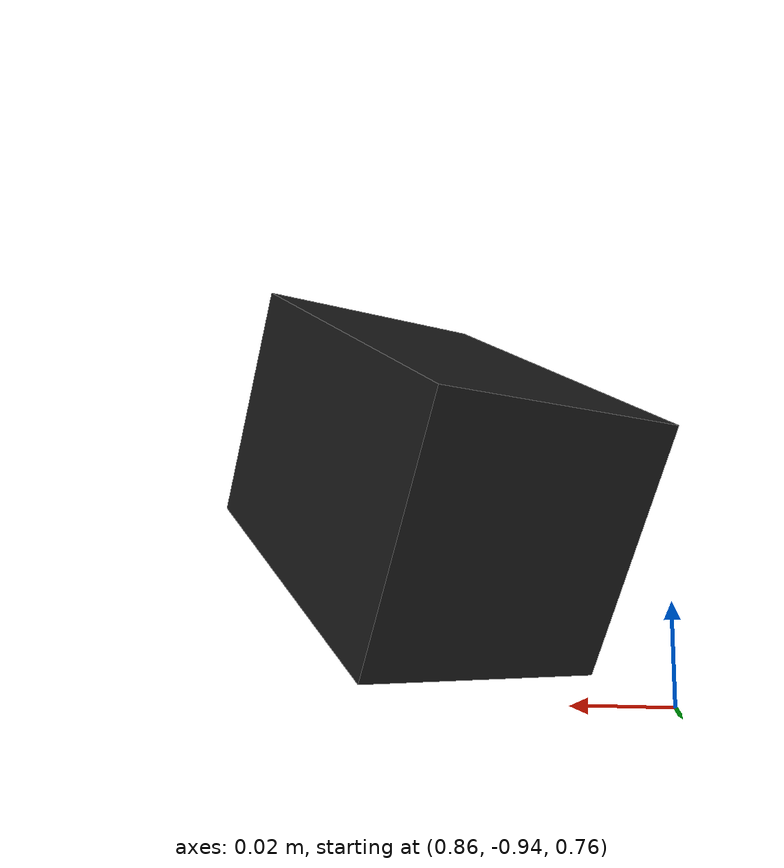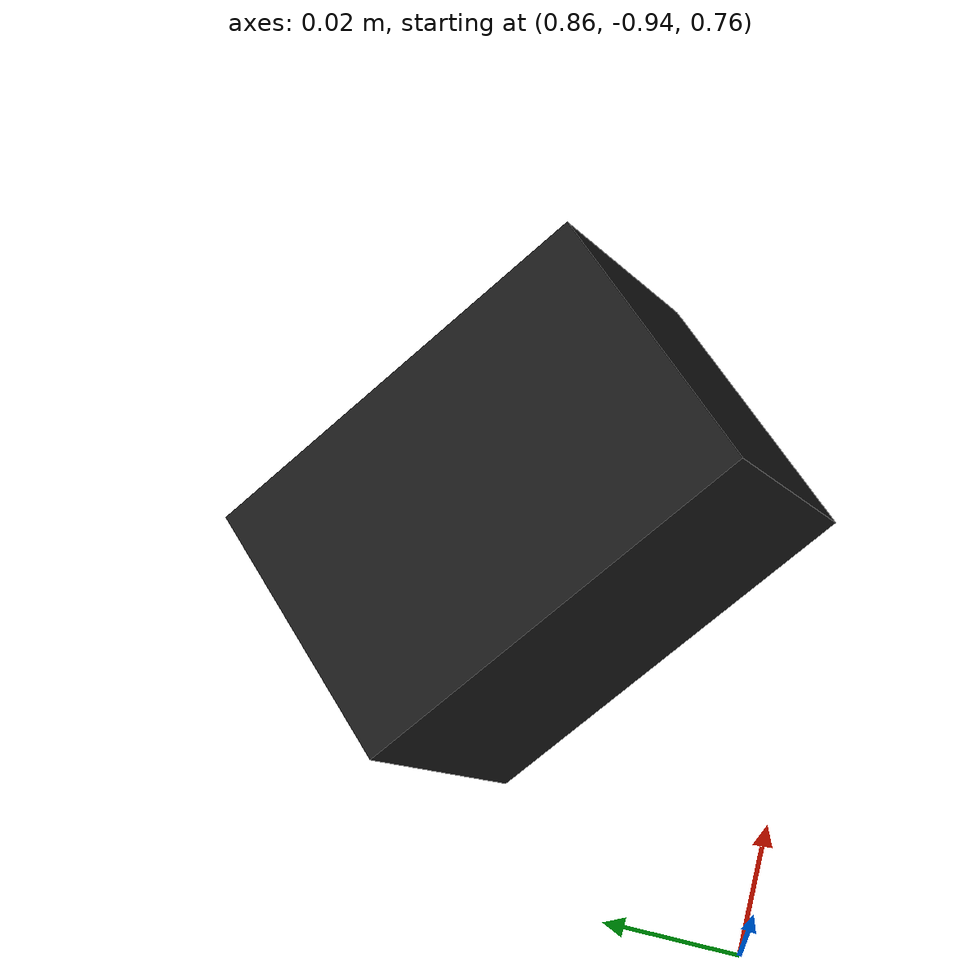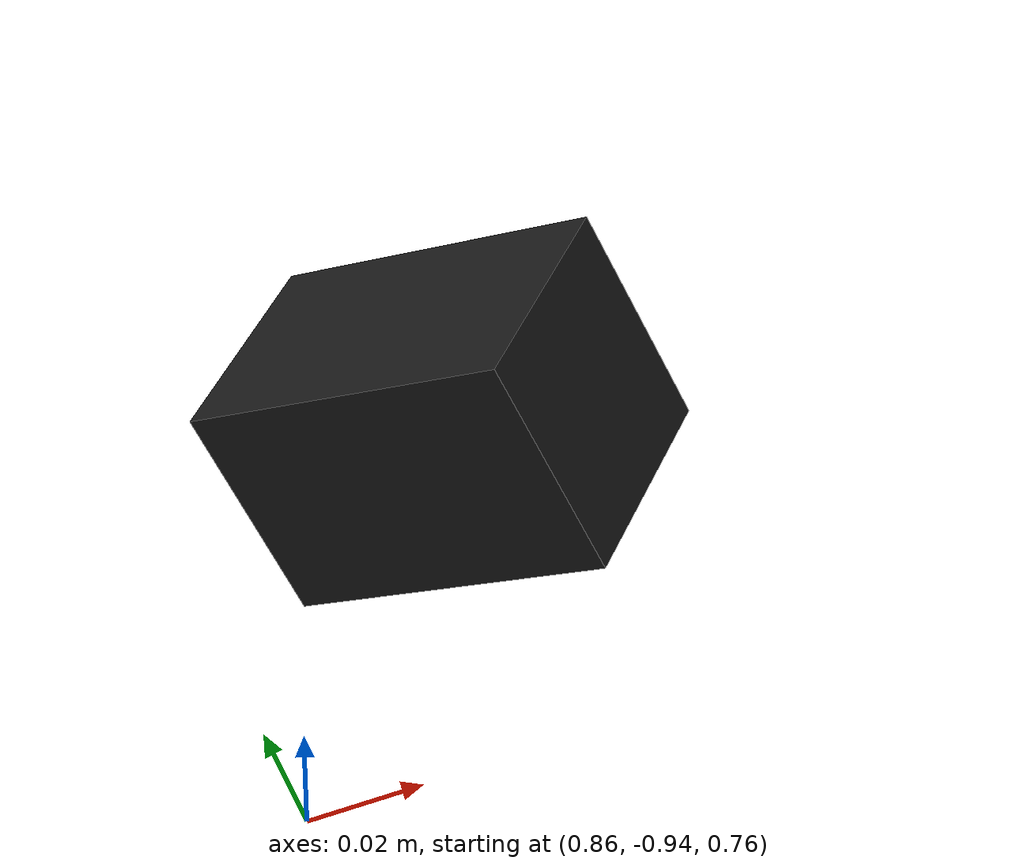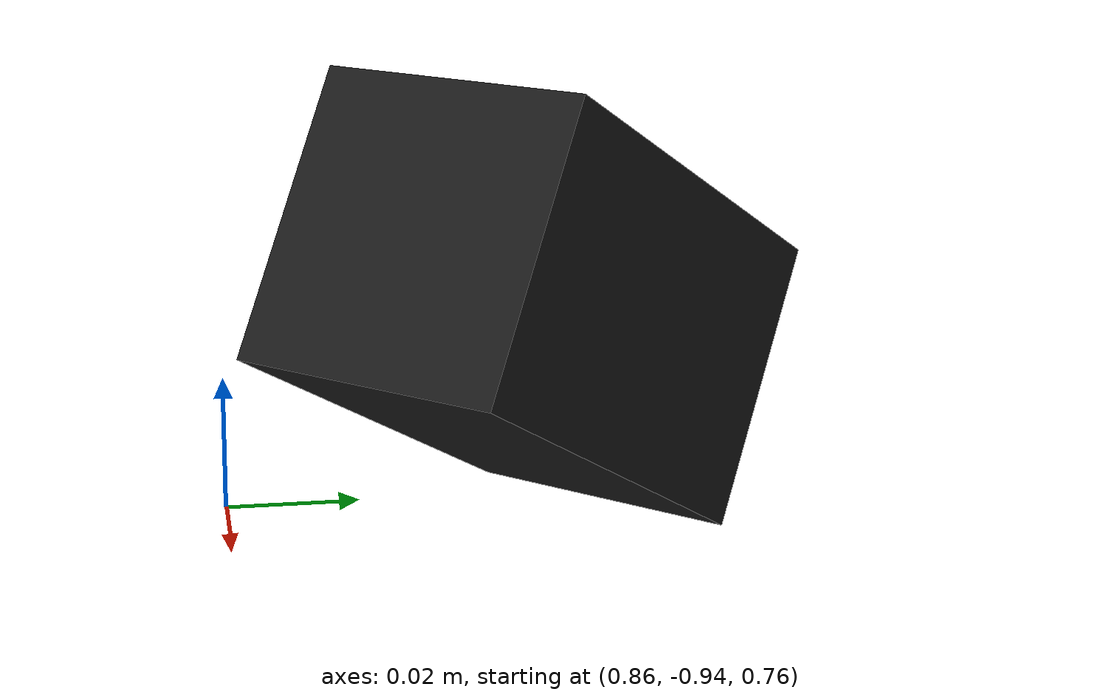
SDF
<?xml version="1.0"?>
<sdf version="1.6">
  <model name="berrypicker_fixed_camera">
    <static>true</static>
    <!-- Gazebo cameras look along their positive X axis. -->
    <pose>0.9 -0.9 0.8 0 0.5 2.35619449</pose>
    <link name="gazebo_camera_0_link">
      <visual name="camera_body">
        <geometry>
          <box>
            <size>0.06 0.04 0.04</size>
          </box>
        </geometry>
        <material>
          <ambient>0.1 0.1 0.1 1</ambient>
          <diffuse>0.1 0.1 0.1 1</diffuse>
        </material>
      </visual>
      <sensor name="camera_0" type="camera">
        <always_on>true</always_on>
        <update_rate>10</update_rate>
        <visualize>true</visualize>
        <camera name="camera_0">
          <horizontal_fov>1.04719755</horizontal_fov>
          <image>
            <width>512</width>
            <height>512</height>
            <format>R8G8B8</format>
          </image>
          <clip>
            <near>0.02</near>
            <far>20</far>
          </clip>
        </camera>
        <plugin name="camera_controller" filename="libgazebo_ros_camera.so">
          <ros>
            <namespace>/berrypicker/gazebo</namespace>
            <remapping>camera_0/image_raw:=/berrypicker/gazebo/camera_0/image_raw</remapping>
            <remapping>camera_0/camera_info:=/berrypicker/gazebo/camera_0/camera_info</remapping>
          </ros>
          <camera_name>camera_0</camera_name>
          <frame_name>gazebo_camera_0_link</frame_name>
        </plugin>
      </sensor>
    </link>
  </model>
</sdf>
